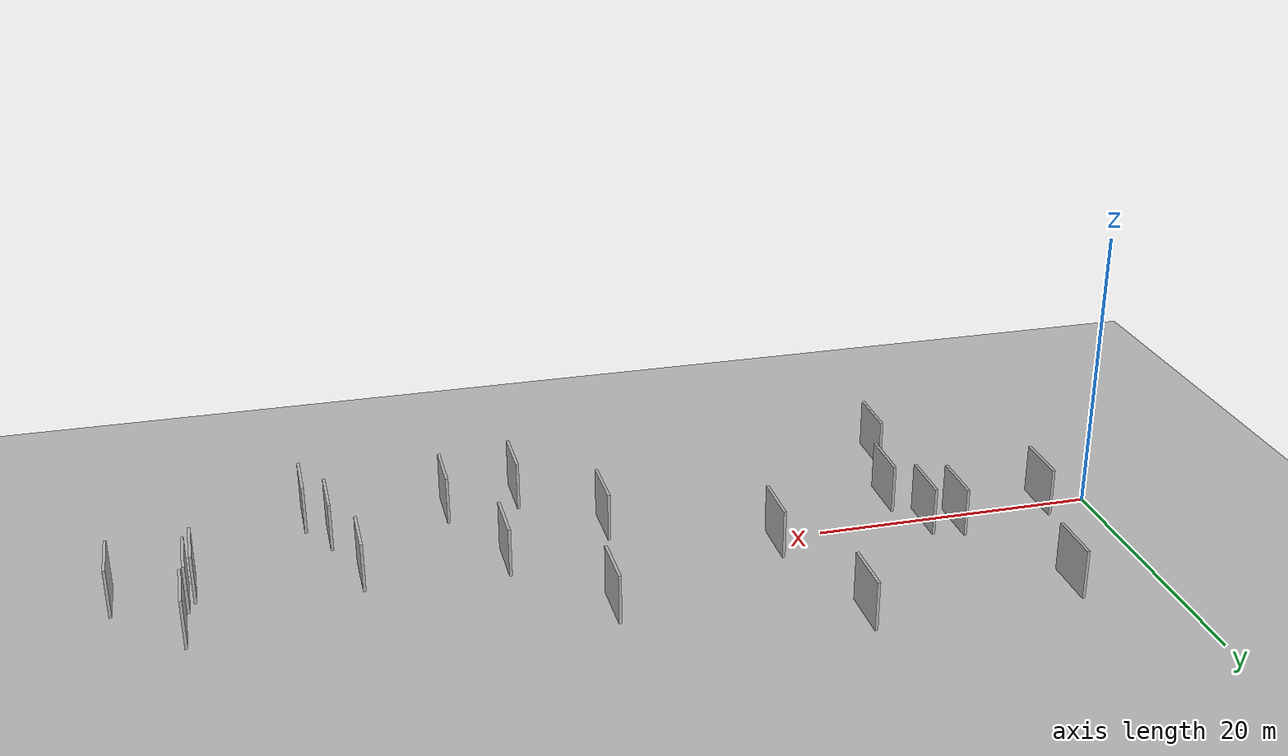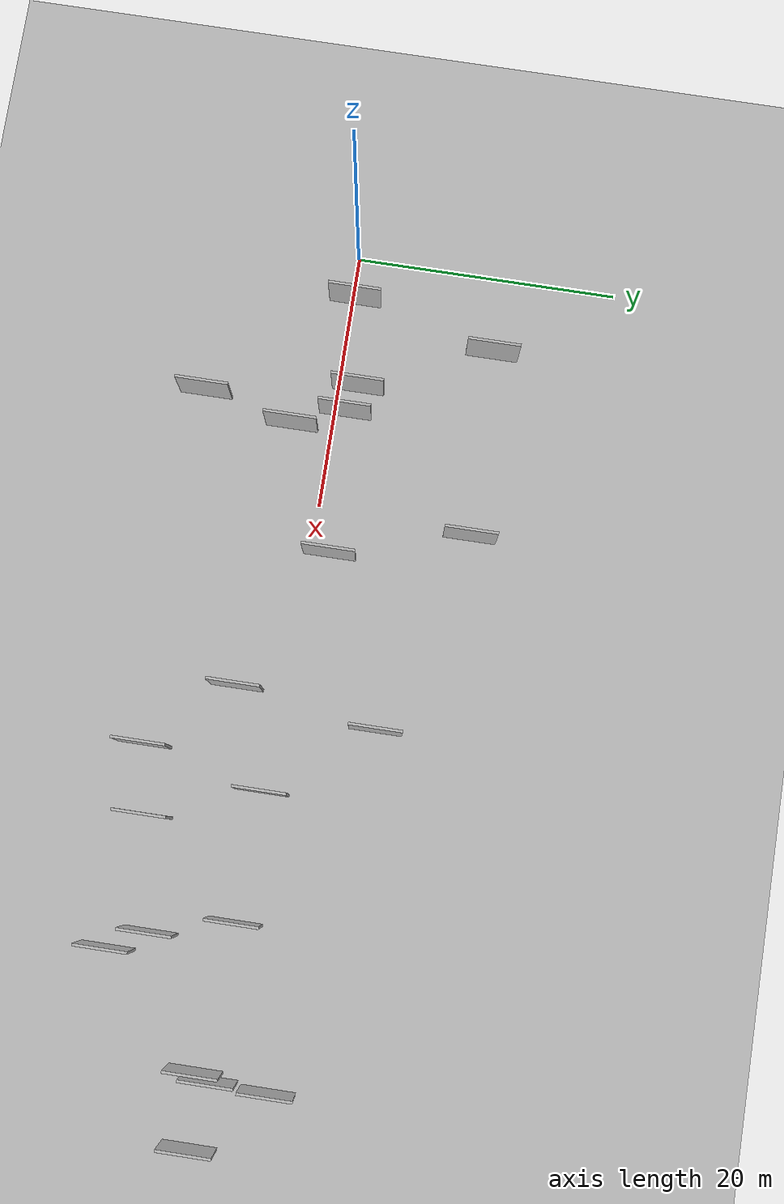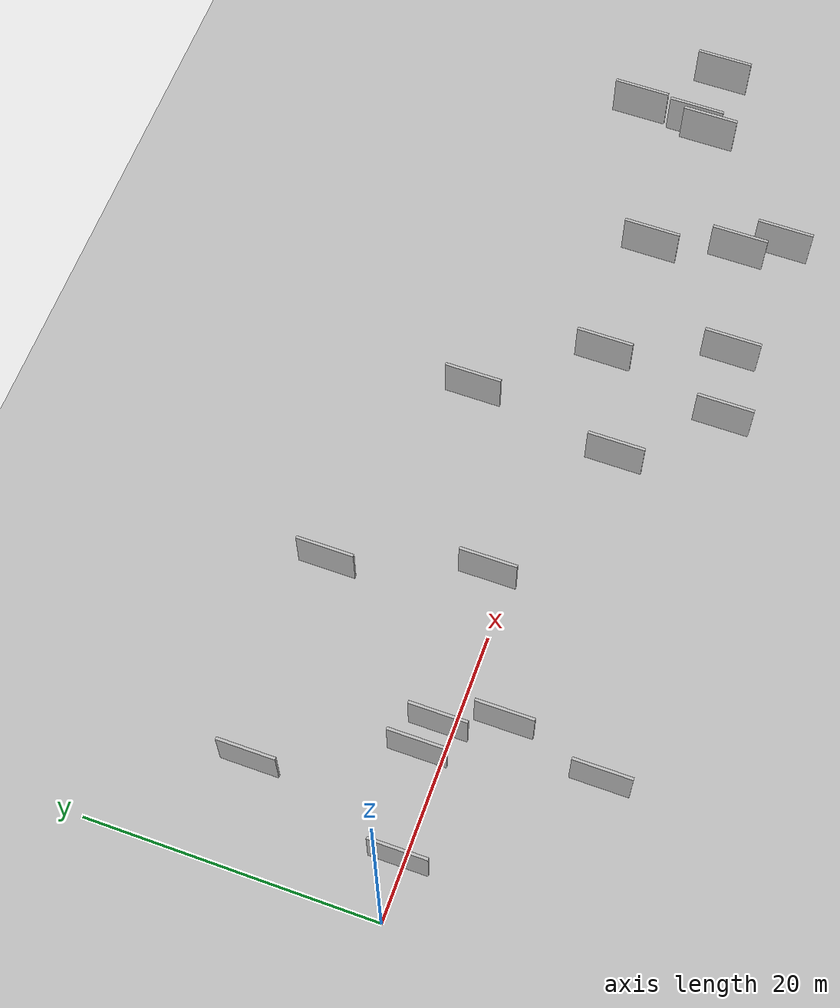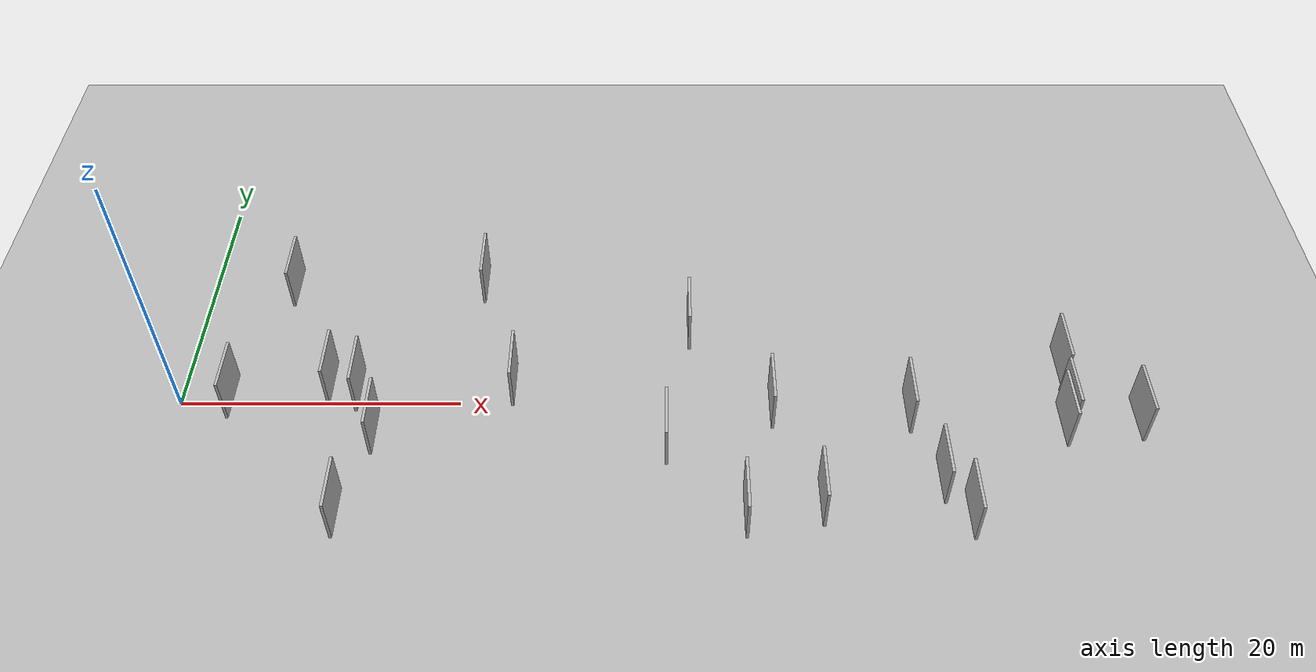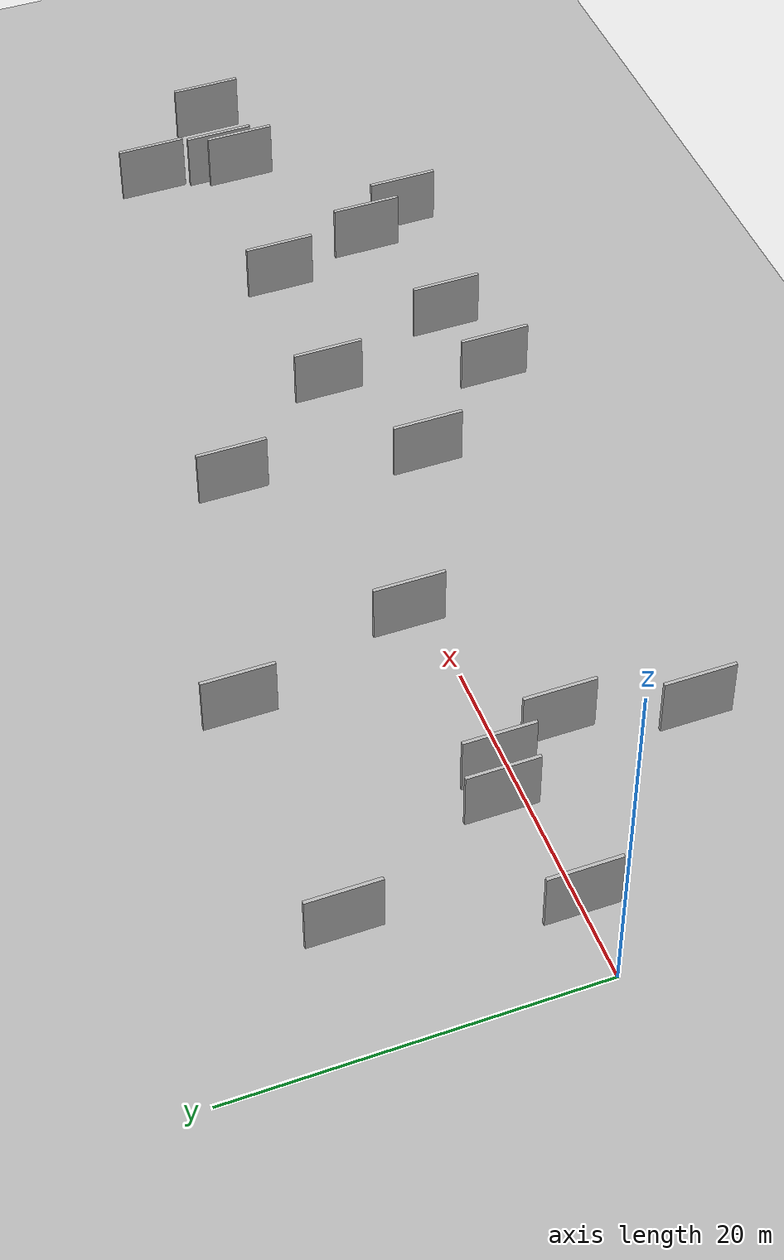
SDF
<?xml version="1.0" encoding="utf-8"?>

<sdf version="1.6">

   <world name="default">

      <gui fullscreen="0">

         <camera name="user_camera">

            <pose>-15 0 4.57585 0 0 0</pose>

            <view_controller>orbit</view_controller>

         </camera>

      </gui>

      <scene>

         <sky>

           <clouds>

             <speed>12</speed>

           </clouds>

         </sky>

         <ambient>0.4 0.4 0.4 1</ambient>

         <background>0.7 0.7 0.7 1</background>

         <shadows>1</shadows>

      </scene>

      <gravity>0 0 -9.8066</gravity>

      <magnetic_field>6e-06 2.3e-05 -4.2e-05</magnetic_field>

      <physics default="0" name="default_physics" type="ode">

         <ode>

            <solver>

               <type>quick</type>

               <iters>10</iters>

               <sor>1.0</sor>

               <use_dynamic_moi_rescaling>0</use_dynamic_moi_rescaling>

            </solver>

            <constraints>

               <cfm>0</cfm>

               <erp>0.2</erp>

               <contact_max_correcting_vel>100</contact_max_correcting_vel>

               <contact_surface_layer>0.001</contact_surface_layer>

            </constraints>

         </ode>

         <max_step_size>0.004</max_step_size>

         <real_time_factor>1</real_time_factor>

         <real_time_update_rate>250</real_time_update_rate>

      </physics>

      <light name="sun" type="directional">

         <cast_shadows>1</cast_shadows>

         <pose>0 0 10 0 0 0</pose>

         <diffuse>0.8 0.8 0.8 1</diffuse>

         <specular>0.2 0.2 0.2 1</specular>

         <attenuation>

            <range>1000</range>

            <constant>0.9</constant>

            <linear>0.01</linear>

            <quadratic>0.001</quadratic>

         </attenuation>

         <direction>-0.5 0.1 -0.9</direction>

      </light>

      <include>

         <name>ground_plane_1</name>

         <uri>model://HANNAS_ground_plane</uri>

         <pose>0 0 0  0 0 0</pose>

      </include>

      <include>

         <name>ground_plane_2</name>

         <uri>model://HANNAS_ground_plane</uri>

         <pose>100 0 0  0 0 0</pose>

      </include>

      <model name="HANNAS_wall_1">

         <static>1</static>

         <pose frame="">53.3287 -7.1377 0.0 0.000000 0.000000 1.570796</pose>

         <link name="link">

            <pose frame="">0 0 2.00 0 0 0</pose>

            <collision name="collision">

               <geometry>

                  <box>

                     <size>4.00 0.2 4.00</size>

                  </box>

               </geometry>

               <max_contacts>10</max_contacts>

               <surface>

                  <contact>

                     <ode/>

                  </contact>

                  <bounce/>

                  <friction>

                     <torsional>

                        <ode/>

                     </torsional>

                     <ode/>

                  </friction>

               </surface>

            </collision>

            <visual name="visual">

               <cast_shadows>0</cast_shadows>

               <geometry>

                  <box>

                     <size>4.00 0.2 4.00</size>

                  </box>

               </geometry>

               <material>

                  <script>

                     <uri>model://HANNAS_wall/materials/scripts</uri>

                     <uri>model://HANNAS_wall/materials/textures</uri>

                     <name>vrc/HANNAS_wall</name>

                  </script>

               </material>

            </visual>

            <self_collide>0</self_collide>

            <enable_wind>0</enable_wind>

            <kinematic>0</kinematic>

         </link>

      </model>

      <model name="HANNAS_wall_2">

         <static>1</static>

         <pose frame="">6.4841 11.3094 0.0 0.000000 0.000000 1.570796</pose>

         <link name="link">

            <pose frame="">0 0 2.00 0 0 0</pose>

            <collision name="collision">

               <geometry>

                  <box>

                     <size>4.00 0.2 4.00</size>

                  </box>

               </geometry>

               <max_contacts>10</max_contacts>

               <surface>

                  <contact>

                     <ode/>

                  </contact>

                  <bounce/>

                  <friction>

                     <torsional>

                        <ode/>

                     </torsional>

                     <ode/>

                  </friction>

               </surface>

            </collision>

            <visual name="visual">

               <cast_shadows>0</cast_shadows>

               <geometry>

                  <box>

                     <size>4.00 0.2 4.00</size>

                  </box>

               </geometry>

               <material>

                  <script>

                     <uri>model://HANNAS_wall/materials/scripts</uri>

                     <uri>model://HANNAS_wall/materials/textures</uri>

                     <name>vrc/HANNAS_wall</name>

                  </script>

               </material>

            </visual>

            <self_collide>0</self_collide>

            <enable_wind>0</enable_wind>

            <kinematic>0</kinematic>

         </link>

      </model>

      <model name="HANNAS_wall_3">

         <static>1</static>

         <pose frame="">3.7238 0.2727 0.0 0.000000 0.000000 1.570796</pose>

         <link name="link">

            <pose frame="">0 0 2.00 0 0 0</pose>

            <collision name="collision">

               <geometry>

                  <box>

                     <size>4.00 0.2 4.00</size>

                  </box>

               </geometry>

               <max_contacts>10</max_contacts>

               <surface>

                  <contact>

                     <ode/>

                  </contact>

                  <bounce/>

                  <friction>

                     <torsional>

                        <ode/>

                     </torsional>

                     <ode/>

                  </friction>

               </surface>

            </collision>

            <visual name="visual">

               <cast_shadows>0</cast_shadows>

               <geometry>

                  <box>

                     <size>4.00 0.2 4.00</size>

                  </box>

               </geometry>

               <material>

                  <script>

                     <uri>model://HANNAS_wall/materials/scripts</uri>

                     <uri>model://HANNAS_wall/materials/textures</uri>

                     <name>vrc/HANNAS_wall</name>

                  </script>

               </material>

            </visual>

            <self_collide>0</self_collide>

            <enable_wind>0</enable_wind>

            <kinematic>0</kinematic>

         </link>

      </model>

      <model name="HANNAS_wall_4">

         <static>1</static>

         <pose frame="">12.7453 0.8998 0.0 0.000000 0.000000 1.570796</pose>

         <link name="link">

            <pose frame="">0 0 2.00 0 0 0</pose>

            <collision name="collision">

               <geometry>

                  <box>

                     <size>4.00 0.2 4.00</size>

                  </box>

               </geometry>

               <max_contacts>10</max_contacts>

               <surface>

                  <contact>

                     <ode/>

                  </contact>

                  <bounce/>

                  <friction>

                     <torsional>

                        <ode/>

                     </torsional>

                     <ode/>

                  </friction>

               </surface>

            </collision>

            <visual name="visual">

               <cast_shadows>0</cast_shadows>

               <geometry>

                  <box>

                     <size>4.00 0.2 4.00</size>

                  </box>

               </geometry>

               <material>

                  <script>

                     <uri>model://HANNAS_wall/materials/scripts</uri>

                     <uri>model://HANNAS_wall/materials/textures</uri>

                     <name>vrc/HANNAS_wall</name>

                  </script>

               </material>

            </visual>

            <self_collide>0</self_collide>

            <enable_wind>0</enable_wind>

            <kinematic>0</kinematic>

         </link>

      </model>

      <model name="HANNAS_wall_5">

         <static>1</static>

         <pose frame="">62.9986 -1.1059 0.0 0.000000 0.000000 1.570796</pose>

         <link name="link">

            <pose frame="">0 0 2.00 0 0 0</pose>

            <collision name="collision">

               <geometry>

                  <box>

                     <size>4.00 0.2 4.00</size>

                  </box>

               </geometry>

               <max_contacts>10</max_contacts>

               <surface>

                  <contact>

                     <ode/>

                  </contact>

                  <bounce/>

                  <friction>

                     <torsional>

                        <ode/>

                     </torsional>

                     <ode/>

                  </friction>

               </surface>

            </collision>

            <visual name="visual">

               <cast_shadows>0</cast_shadows>

               <geometry>

                  <box>

                     <size>4.00 0.2 4.00</size>

                  </box>

               </geometry>

               <material>

                  <script>

                     <uri>model://HANNAS_wall/materials/scripts</uri>

                     <uri>model://HANNAS_wall/materials/textures</uri>

                     <name>vrc/HANNAS_wall</name>

                  </script>

               </material>

            </visual>

            <self_collide>0</self_collide>

            <enable_wind>0</enable_wind>

            <kinematic>0</kinematic>

         </link>

      </model>

      <model name="HANNAS_wall_6">

         <static>1</static>

         <pose frame="">14.3016 -2.9795 0.0 0.000000 0.000000 1.570796</pose>

         <link name="link">

            <pose frame="">0 0 2.00 0 0 0</pose>

            <collision name="collision">

               <geometry>

                  <box>

                     <size>4.00 0.2 4.00</size>

                  </box>

               </geometry>

               <max_contacts>10</max_contacts>

               <surface>

                  <contact>

                     <ode/>

                  </contact>

                  <bounce/>

                  <friction>

                     <torsional>

                        <ode/>

                     </torsional>

                     <ode/>

                  </friction>

               </surface>

            </collision>

            <visual name="visual">

               <cast_shadows>0</cast_shadows>

               <geometry>

                  <box>

                     <size>4.00 0.2 4.00</size>

                  </box>

               </geometry>

               <material>

                  <script>

                     <uri>model://HANNAS_wall/materials/scripts</uri>

                     <uri>model://HANNAS_wall/materials/textures</uri>

                     <name>vrc/HANNAS_wall</name>

                  </script>

               </material>

            </visual>

            <self_collide>0</self_collide>

            <enable_wind>0</enable_wind>

            <kinematic>0</kinematic>

         </link>

      </model>

      <model name="HANNAS_wall_7">

         <static>1</static>

         <pose frame="">20.9315 11.6656 0.0 0.000000 0.000000 1.570796</pose>

         <link name="link">

            <pose frame="">0 0 2.00 0 0 0</pose>

            <collision name="collision">

               <geometry>

                  <box>

                     <size>4.00 0.2 4.00</size>

                  </box>

               </geometry>

               <max_contacts>10</max_contacts>

               <surface>

                  <contact>

                     <ode/>

                  </contact>

                  <bounce/>

                  <friction>

                     <torsional>

                        <ode/>

                     </torsional>

                     <ode/>

                  </friction>

               </surface>

            </collision>

            <visual name="visual">

               <cast_shadows>0</cast_shadows>

               <geometry>

                  <box>

                     <size>4.00 0.2 4.00</size>

                  </box>

               </geometry>

               <material>

                  <script>

                     <uri>model://HANNAS_wall/materials/scripts</uri>

                     <uri>model://HANNAS_wall/materials/textures</uri>

                     <name>vrc/HANNAS_wall</name>

                  </script>

               </material>

            </visual>

            <self_collide>0</self_collide>

            <enable_wind>0</enable_wind>

            <kinematic>0</kinematic>

         </link>

      </model>

      <model name="HANNAS_wall_8">

         <static>1</static>

         <pose frame="">63.2303 3.1358 0.0 0.000000 0.000000 1.570796</pose>

         <link name="link">

            <pose frame="">0 0 2.00 0 0 0</pose>

            <collision name="collision">

               <geometry>

                  <box>

                     <size>4.00 0.2 4.00</size>

                  </box>

               </geometry>

               <max_contacts>10</max_contacts>

               <surface>

                  <contact>

                     <ode/>

                  </contact>

                  <bounce/>

                  <friction>

                     <torsional>

                        <ode/>

                     </torsional>

                     <ode/>

                  </friction>

               </surface>

            </collision>

            <visual name="visual">

               <cast_shadows>0</cast_shadows>

               <geometry>

                  <box>

                     <size>4.00 0.2 4.00</size>

                  </box>

               </geometry>

               <material>

                  <script>

                     <uri>model://HANNAS_wall/materials/scripts</uri>

                     <uri>model://HANNAS_wall/materials/textures</uri>

                     <name>vrc/HANNAS_wall</name>

                  </script>

               </material>

            </visual>

            <self_collide>0</self_collide>

            <enable_wind>0</enable_wind>

            <kinematic>0</kinematic>

         </link>

      </model>

      <model name="HANNAS_wall_9">

         <static>1</static>

         <pose frame="">23.7920 1.4144 0.0 0.000000 0.000000 1.570796</pose>

         <link name="link">

            <pose frame="">0 0 2.00 0 0 0</pose>

            <collision name="collision">

               <geometry>

                  <box>

                     <size>4.00 0.2 4.00</size>

                  </box>

               </geometry>

               <max_contacts>10</max_contacts>

               <surface>

                  <contact>

                     <ode/>

                  </contact>

                  <bounce/>

                  <friction>

                     <torsional>

                        <ode/>

                     </torsional>

                     <ode/>

                  </friction>

               </surface>

            </collision>

            <visual name="visual">

               <cast_shadows>0</cast_shadows>

               <geometry>

                  <box>

                     <size>4.00 0.2 4.00</size>

                  </box>

               </geometry>

               <material>

                  <script>

                     <uri>model://HANNAS_wall/materials/scripts</uri>

                     <uri>model://HANNAS_wall/materials/textures</uri>

                     <name>vrc/HANNAS_wall</name>

                  </script>

               </material>

            </visual>

            <self_collide>0</self_collide>

            <enable_wind>0</enable_wind>

            <kinematic>0</kinematic>

         </link>

      </model>

      <model name="HANNAS_wall_10">

         <static>1</static>

         <pose frame="">54.8719 -10.0280 0.0 0.000000 0.000000 1.570796</pose>

         <link name="link">

            <pose frame="">0 0 2.00 0 0 0</pose>

            <collision name="collision">

               <geometry>

                  <box>

                     <size>4.00 0.2 4.00</size>

                  </box>

               </geometry>

               <max_contacts>10</max_contacts>

               <surface>

                  <contact>

                     <ode/>

                  </contact>

                  <bounce/>

                  <friction>

                     <torsional>

                        <ode/>

                     </torsional>

                     <ode/>

                  </friction>

               </surface>

            </collision>

            <visual name="visual">

               <cast_shadows>0</cast_shadows>

               <geometry>

                  <box>

                     <size>4.00 0.2 4.00</size>

                  </box>

               </geometry>

               <material>

                  <script>

                     <uri>model://HANNAS_wall/materials/scripts</uri>

                     <uri>model://HANNAS_wall/materials/textures</uri>

                     <name>vrc/HANNAS_wall</name>

                  </script>

               </material>

            </visual>

            <self_collide>0</self_collide>

            <enable_wind>0</enable_wind>

            <kinematic>0</kinematic>

         </link>

      </model>

      <model name="HANNAS_wall_11">

         <static>1</static>

         <pose frame="">51.7635 -1.1362 0.0 0.000000 0.000000 1.570796</pose>

         <link name="link">

            <pose frame="">0 0 2.00 0 0 0</pose>

            <collision name="collision">

               <geometry>

                  <box>

                     <size>4.00 0.2 4.00</size>

                  </box>

               </geometry>

               <max_contacts>10</max_contacts>

               <surface>

                  <contact>

                     <ode/>

                  </contact>

                  <bounce/>

                  <friction>

                     <torsional>

                        <ode/>

                     </torsional>

                     <ode/>

                  </friction>

               </surface>

            </collision>

            <visual name="visual">

               <cast_shadows>0</cast_shadows>

               <geometry>

                  <box>

                     <size>4.00 0.2 4.00</size>

                  </box>

               </geometry>

               <material>

                  <script>

                     <uri>model://HANNAS_wall/materials/scripts</uri>

                     <uri>model://HANNAS_wall/materials/textures</uri>

                     <name>vrc/HANNAS_wall</name>

                  </script>

               </material>

            </visual>

            <self_collide>0</self_collide>

            <enable_wind>0</enable_wind>

            <kinematic>0</kinematic>

         </link>

      </model>

      <model name="HANNAS_wall_12">

         <static>1</static>

         <pose frame="">12.7014 -9.8913 0.0 0.000000 0.000000 1.570796</pose>

         <link name="link">

            <pose frame="">0 0 2.00 0 0 0</pose>

            <collision name="collision">

               <geometry>

                  <box>

                     <size>4.00 0.2 4.00</size>

                  </box>

               </geometry>

               <max_contacts>10</max_contacts>

               <surface>

                  <contact>

                     <ode/>

                  </contact>

                  <bounce/>

                  <friction>

                     <torsional>

                        <ode/>

                     </torsional>

                     <ode/>

                  </friction>

               </surface>

            </collision>

            <visual name="visual">

               <cast_shadows>0</cast_shadows>

               <geometry>

                  <box>

                     <size>4.00 0.2 4.00</size>

                  </box>

               </geometry>

               <material>

                  <script>

                     <uri>model://HANNAS_wall/materials/scripts</uri>

                     <uri>model://HANNAS_wall/materials/textures</uri>

                     <name>vrc/HANNAS_wall</name>

                  </script>

               </material>

            </visual>

            <self_collide>0</self_collide>

            <enable_wind>0</enable_wind>

            <kinematic>0</kinematic>

         </link>

      </model>

      <model name="HANNAS_wall_13">

         <static>1</static>

         <pose frame="">62.5439 -2.2727 0.0 0.000000 0.000000 1.570796</pose>

         <link name="link">

            <pose frame="">0 0 2.00 0 0 0</pose>

            <collision name="collision">

               <geometry>

                  <box>

                     <size>4.00 0.2 4.00</size>

                  </box>

               </geometry>

               <max_contacts>10</max_contacts>

               <surface>

                  <contact>

                     <ode/>

                  </contact>

                  <bounce/>

                  <friction>

                     <torsional>

                        <ode/>

                     </torsional>

                     <ode/>

                  </friction>

               </surface>

            </collision>

            <visual name="visual">

               <cast_shadows>0</cast_shadows>

               <geometry>

                  <box>

                     <size>4.00 0.2 4.00</size>

                  </box>

               </geometry>

               <material>

                  <script>

                     <uri>model://HANNAS_wall/materials/scripts</uri>

                     <uri>model://HANNAS_wall/materials/textures</uri>

                     <name>vrc/HANNAS_wall</name>

                  </script>

               </material>

            </visual>

            <self_collide>0</self_collide>

            <enable_wind>0</enable_wind>

            <kinematic>0</kinematic>

         </link>

      </model>

      <model name="HANNAS_wall_14">

         <static>1</static>

         <pose frame="">39.9388 -9.9255 0.0 0.000000 0.000000 1.570796</pose>

         <link name="link">

            <pose frame="">0 0 2.00 0 0 0</pose>

            <collision name="collision">

               <geometry>

                  <box>

                     <size>4.00 0.2 4.00</size>

                  </box>

               </geometry>

               <max_contacts>10</max_contacts>

               <surface>

                  <contact>

                     <ode/>

                  </contact>

                  <bounce/>

                  <friction>

                     <torsional>

                        <ode/>

                     </torsional>

                     <ode/>

                  </friction>

               </surface>

            </collision>

            <visual name="visual">

               <cast_shadows>0</cast_shadows>

               <geometry>

                  <box>

                     <size>4.00 0.2 4.00</size>

                  </box>

               </geometry>

               <material>

                  <script>

                     <uri>model://HANNAS_wall/materials/scripts</uri>

                     <uri>model://HANNAS_wall/materials/textures</uri>

                     <name>vrc/HANNAS_wall</name>

                  </script>

               </material>

            </visual>

            <self_collide>0</self_collide>

            <enable_wind>0</enable_wind>

            <kinematic>0</kinematic>

         </link>

      </model>

      <model name="HANNAS_wall_15">

         <static>1</static>

         <pose frame="">10.6687 1.5622 0.0 0.000000 0.000000 1.570796</pose>

         <link name="link">

            <pose frame="">0 0 2.00 0 0 0</pose>

            <collision name="collision">

               <geometry>

                  <box>

                     <size>4.00 0.2 4.00</size>

                  </box>

               </geometry>

               <max_contacts>10</max_contacts>

               <surface>

                  <contact>

                     <ode/>

                  </contact>

                  <bounce/>

                  <friction>

                     <torsional>

                        <ode/>

                     </torsional>

                     <ode/>

                  </friction>

               </surface>

            </collision>

            <visual name="visual">

               <cast_shadows>0</cast_shadows>

               <geometry>

                  <box>

                     <size>4.00 0.2 4.00</size>

                  </box>

               </geometry>

               <material>

                  <script>

                     <uri>model://HANNAS_wall/materials/scripts</uri>

                     <uri>model://HANNAS_wall/materials/textures</uri>

                     <name>vrc/HANNAS_wall</name>

                  </script>

               </material>

            </visual>

            <self_collide>0</self_collide>

            <enable_wind>0</enable_wind>

            <kinematic>0</kinematic>

         </link>

      </model>

      <model name="HANNAS_wall_16">

         <static>1</static>

         <pose frame="">67.8674 -1.8321 0.0 0.000000 0.000000 1.570796</pose>

         <link name="link">

            <pose frame="">0 0 2.00 0 0 0</pose>

            <collision name="collision">

               <geometry>

                  <box>

                     <size>4.00 0.2 4.00</size>

                  </box>

               </geometry>

               <max_contacts>10</max_contacts>

               <surface>

                  <contact>

                     <ode/>

                  </contact>

                  <bounce/>

                  <friction>

                     <torsional>

                        <ode/>

                     </torsional>

                     <ode/>

                  </friction>

               </surface>

            </collision>

            <visual name="visual">

               <cast_shadows>0</cast_shadows>

               <geometry>

                  <box>

                     <size>4.00 0.2 4.00</size>

                  </box>

               </geometry>

               <material>

                  <script>

                     <uri>model://HANNAS_wall/materials/scripts</uri>

                     <uri>model://HANNAS_wall/materials/textures</uri>

                     <name>vrc/HANNAS_wall</name>

                  </script>

               </material>

            </visual>

            <self_collide>0</self_collide>

            <enable_wind>0</enable_wind>

            <kinematic>0</kinematic>

         </link>

      </model>

      <model name="HANNAS_wall_17">

         <static>1</static>

         <pose frame="">36.4264 6.8745 0.0 0.000000 0.000000 1.570796</pose>

         <link name="link">

            <pose frame="">0 0 2.00 0 0 0</pose>

            <collision name="collision">

               <geometry>

                  <box>

                     <size>4.00 0.2 4.00</size>

                  </box>

               </geometry>

               <max_contacts>10</max_contacts>

               <surface>

                  <contact>

                     <ode/>

                  </contact>

                  <bounce/>

                  <friction>

                     <torsional>

                        <ode/>

                     </torsional>

                     <ode/>

                  </friction>

               </surface>

            </collision>

            <visual name="visual">

               <cast_shadows>0</cast_shadows>

               <geometry>

                  <box>

                     <size>4.00 0.2 4.00</size>

                  </box>

               </geometry>

               <material>

                  <script>

                     <uri>model://HANNAS_wall/materials/scripts</uri>

                     <uri>model://HANNAS_wall/materials/textures</uri>

                     <name>vrc/HANNAS_wall</name>

                  </script>

               </material>

            </visual>

            <self_collide>0</self_collide>

            <enable_wind>0</enable_wind>

            <kinematic>0</kinematic>

         </link>

      </model>

      <model name="HANNAS_wall_18">

         <static>1</static>

         <pose frame="">42.1293 -0.7217 0.0 0.000000 0.000000 1.570796</pose>

         <link name="link">

            <pose frame="">0 0 2.00 0 0 0</pose>

            <collision name="collision">

               <geometry>

                  <box>

                     <size>4.00 0.2 4.00</size>

                  </box>

               </geometry>

               <max_contacts>10</max_contacts>

               <surface>

                  <contact>

                     <ode/>

                  </contact>

                  <bounce/>

                  <friction>

                     <torsional>

                        <ode/>

                     </torsional>

                     <ode/>

                  </friction>

               </surface>

            </collision>

            <visual name="visual">

               <cast_shadows>0</cast_shadows>

               <geometry>

                  <box>

                     <size>4.00 0.2 4.00</size>

                  </box>

               </geometry>

               <material>

                  <script>

                     <uri>model://HANNAS_wall/materials/scripts</uri>

                     <uri>model://HANNAS_wall/materials/textures</uri>

                     <name>vrc/HANNAS_wall</name>

                  </script>

               </material>

            </visual>

            <self_collide>0</self_collide>

            <enable_wind>0</enable_wind>

            <kinematic>0</kinematic>

         </link>

      </model>

      <model name="HANNAS_wall_19">

         <static>1</static>

         <pose frame="">34.6966 -3.8532 0.0 0.000000 0.000000 1.570796</pose>

         <link name="link">

            <pose frame="">0 0 2.00 0 0 0</pose>

            <collision name="collision">

               <geometry>

                  <box>

                     <size>4.00 0.2 4.00</size>

                  </box>

               </geometry>

               <max_contacts>10</max_contacts>

               <surface>

                  <contact>

                     <ode/>

                  </contact>

                  <bounce/>

                  <friction>

                     <torsional>

                        <ode/>

                     </torsional>

                     <ode/>

                  </friction>

               </surface>

            </collision>

            <visual name="visual">

               <cast_shadows>0</cast_shadows>

               <geometry>

                  <box>

                     <size>4.00 0.2 4.00</size>

                  </box>

               </geometry>

               <material>

                  <script>

                     <uri>model://HANNAS_wall/materials/scripts</uri>

                     <uri>model://HANNAS_wall/materials/textures</uri>

                     <name>vrc/HANNAS_wall</name>

                  </script>

               </material>

            </visual>

            <self_collide>0</self_collide>

            <enable_wind>0</enable_wind>

            <kinematic>0</kinematic>

         </link>

      </model>

      <model name="HANNAS_wall_20">

         <static>1</static>

         <pose frame="">45.0634 -8.9912 0.0 0.000000 0.000000 1.570796</pose>

         <link name="link">

            <pose frame="">0 0 2.00 0 0 0</pose>

            <collision name="collision">

               <geometry>

                  <box>

                     <size>4.00 0.2 4.00</size>

                  </box>

               </geometry>

               <max_contacts>10</max_contacts>

               <surface>

                  <contact>

                     <ode/>

                  </contact>

                  <bounce/>

                  <friction>

                     <torsional>

                        <ode/>

                     </torsional>

                     <ode/>

                  </friction>

               </surface>

            </collision>

            <visual name="visual">

               <cast_shadows>0</cast_shadows>

               <geometry>

                  <box>

                     <size>4.00 0.2 4.00</size>

                  </box>

               </geometry>

               <material>

                  <script>

                     <uri>model://HANNAS_wall/materials/scripts</uri>

                     <uri>model://HANNAS_wall/materials/textures</uri>

                     <name>vrc/HANNAS_wall</name>

                  </script>

               </material>

            </visual>

            <self_collide>0</self_collide>

            <enable_wind>0</enable_wind>

            <kinematic>0</kinematic>

         </link>

      </model>

   </world>

</sdf>

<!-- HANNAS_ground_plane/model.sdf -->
<sdf version="1.4">
<model name="HANNAS_ground_plane">
  <static>true</static>
    <link name="link">
      <collision name="collision">
        <geometry>
          <plane>
            <normal>0 0 1</normal>
            <size>1000 1000</size>
          </plane>
        </geometry>
        <surface>
          <friction>
            <ode>
              <mu>100</mu>
              <mu2>50</mu2>
            </ode>
          </friction>
        </surface>
      </collision>
      <visual name="visual">
        <cast_shadows>false</cast_shadows>
        <geometry>
          <plane>
            <normal>0 0 1</normal>
            <size>1000 1000</size>
          </plane>
        </geometry>
        <material>
          <script>
            <uri>model://HANNAS_ground_plane/materials/scripts/HANNAS_ground_plane.material</uri>
	    <uri>model://HANNAS_ground_plane/materials/textures</uri>
            <name>HANNASGroundPlane/Image</name>
          </script>
        </material>
      </visual>
    </link>
  </model>
</sdf>
